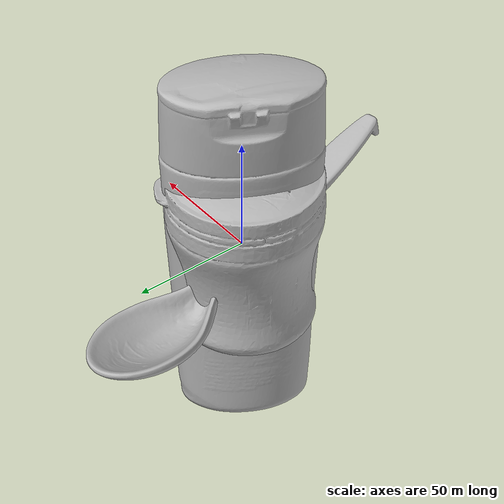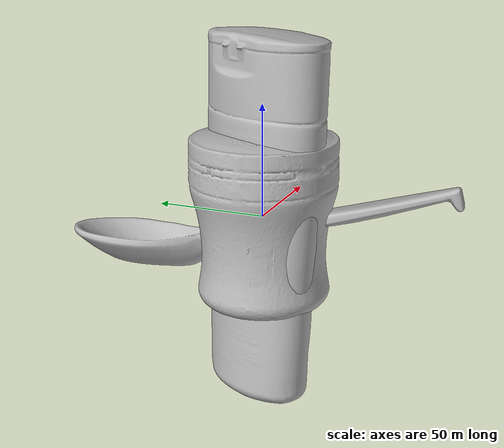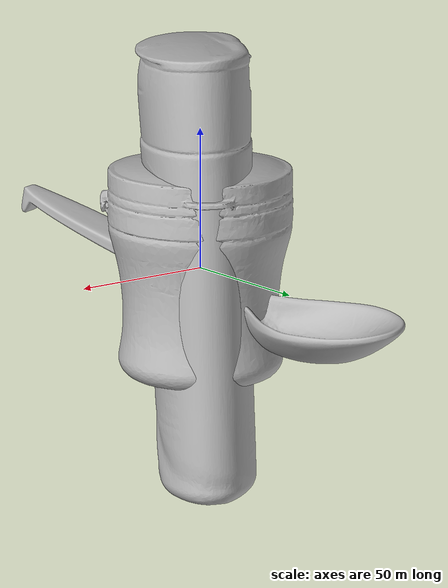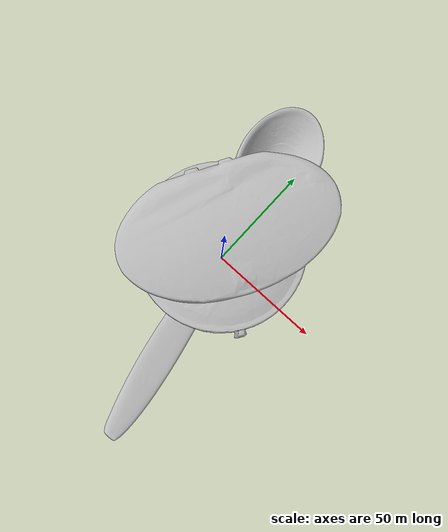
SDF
<sdf version="1.4">
 <world name="default">
  <light name="light1" type="point">
   <pose>0 0 1 0 0 0</pose>
   <diffuse>3 3 3 1</diffuse>
   <specular>3 3 3 1</specular>
  </light>
  <light name="light2" type="point">
   <pose>0 0.5 2 0 0 0</pose>
   <diffuse>1 1 1 1</diffuse>
   <specular>1 1 1 1</specular>
  </light>
  <light name="light3" type="point">
   <pose>0 0.5 2 0 0 0</pose>
   <diffuse>3 3 3 1</diffuse>
   <specular>3 3 3 1</specular>
  </light>
  <scene><ambient>0.7 0.7 0.7</ambient></scene>
  <model name="bottle1">
   <link name="link_bottle1">
    <collision name="default">
     <geometry>
      <mesh><uri>model://green_arrow/collision_meshes/collision.obj</uri><scale>1.0 1.0 1.0</scale></mesh>
     </geometry>
     <surface>
      <friction><ode><mu>0.5</mu><mu2>0.5</mu2></ode></friction>
      <contact><ode><max_vel>0</max_vel><min_depth>0.0001</min_depth><kp>1e8</kp></ode></contact>
     </surface>
    </collision>
    <visual name="default">
     <geometry>
      <mesh><uri>model://green_arrow/visual_meshes/visual.dae</uri><scale>1.0 1.0 1.0</scale></mesh>
     </geometry>
    </visual>
    <inertial>
     <mass>0.159866601228714</mass>
     <pose>0.0005358478520065546 -0.0008270691614598036 0.0022109695710241795 -0.0633227561078847 0.012984243694000861 0.6740794776591725</pose>
     <inertia>
      <ixx>0.00011596808</ixx>
      <iyy>0.00011579238</iyy>
      <izz>7.488036e-05</izz>
      <ixy>0</ixy>
      <ixz>0</ixz>
      <iyz>0</iyz>
     </inertia>
    </inertial>
   </link>
   <pose>0.02475765347480774 -0.08262830972671509 0.039030857384204865 0.038517749563461656 0.024628244692159674 -1.2576323251898738</pose>
  </model>
  <model name="bottle2">
   <link name="link_bottle2">
    <collision name="default">
     <geometry>
      <mesh><uri>model://conditioner/collision_meshes/collision.obj</uri><scale>1.0 1.0 1.0</scale></mesh>
     </geometry>
     <surface>
      <friction><ode><mu>0.5</mu><mu2>0.5</mu2></ode></friction>
      <contact><ode><max_vel>0</max_vel><min_depth>0.0001</min_depth><kp>1e8</kp></ode></contact>
     </surface>
    </collision>
    <visual name="default">
     <geometry>
      <mesh><uri>model://conditioner/visual_meshes/visual.dae</uri><scale>1.0 1.0 1.0</scale></mesh>
     </geometry>
    </visual>
    <inertial>
     <mass>0.1887805312871933</mass>
     <pose>-0.00055994390277192 -0.00017297487647738308 0.004359682556241751 -0.005038374268360293 0.015306043554332214 0.015072361860715313</pose>
     <inertia>
      <ixx>0.00041066532</ixx>
      <iyy>0.00043991112</iyy>
      <izz>6.3318876e-05</izz>
      <ixy>0</ixy>
      <ixz>0</ixz>
      <iyz>0</iyz>
     </inertia>
    </inertial>
   </link>
   <pose>-0.07343637943267822 0.34930217266082764 0.08122971653938293 0.036892961835731986 -0.01566048277103581 1.02847657061471</pose>
  </model>
  <model name="silverware1">
   <link name="link_silverware1">
    <collision name="default">
     <geometry>
      <mesh><uri>model://doraemon_spoon/collision_meshes/collision.obj</uri><scale>1.0 1.0 1.0</scale></mesh>
     </geometry>
     <surface>
      <friction><ode><mu>0.5</mu><mu2>0.5</mu2></ode></friction>
      <contact><ode><max_vel>0</max_vel><min_depth>0.0001</min_depth><kp>1e8</kp></ode></contact>
     </surface>
    </collision>
    <visual name="default">
     <geometry>
      <mesh><uri>model://doraemon_spoon/visual_meshes/visual.dae</uri><scale>1.0 1.0 1.0</scale></mesh>
     </geometry>
    </visual>
    <inertial>
     <mass>0.029215902090072632</mass>
     <pose>-0.022165078669786453 -0.0006374581134878099 -0.003332544816657901 -0.009147069561506448 0.07380416816022378 -0.014123831282405222</pose>
     <inertia>
      <ixx>2.2884674e-06</ixx>
      <iyy>6.499588e-05</iyy>
      <izz>6.610089e-05</izz>
      <ixy>0</ixy>
      <ixz>0</ixz>
      <iyz>0</iyz>
     </inertia>
    </inertial>
   </link>
   <pose>0.18510812520980835 -0.2743149399757385 0.023920930922031403 -0.0915692644533032 -0.26928936277419413 -1.3384359461475486</pose>
  </model>
  <model name="stationery1">
   <link name="link_stationery1">
    <collision name="default">
     <geometry>
      <mesh><uri>model://correction_fuid/collision_meshes/collision.obj</uri><scale>1.0 1.0 1.0</scale></mesh>
     </geometry>
     <surface>
      <friction><ode><mu>0.5</mu><mu2>0.5</mu2></ode></friction>
      <contact><ode><max_vel>0</max_vel><min_depth>0.0001</min_depth><kp>1e8</kp></ode></contact>
     </surface>
    </collision>
    <visual name="default">
     <geometry>
      <mesh><uri>model://correction_fuid/visual_meshes/visual.dae</uri><scale>1.0 1.0 1.0</scale></mesh>
     </geometry>
    </visual>
    <inertial>
     <mass>0.02664039097726345</mass>
     <pose>-0.00012557733862195164 -0.0009722907561808825 -0.001618212671019137 -0.010846611490809042 0.019488348158978066 -0.015992455472155966</pose>
     <inertia>
      <ixx>2.5801672e-05</ixx>
      <iyy>1.5615498e-06</iyy>
      <izz>2.6473212e-05</izz>
      <ixy>0</ixy>
      <ixz>0</ixz>
      <iyz>0</iyz>
     </inertia>
    </inertial>
   </link>
   <pose>0.2447088360786438 -0.2514607906341553 0.009632827714085579 -0.0017273106741335627 -0.05616853281425508 -1.3493126301145288</pose>
  </model>
  <model name="bowl1">
   <link name="link_bowl1">
    <collision name="default">
     <geometry>
      <mesh><uri>model://doraemon_bowl/collision_meshes/collision.obj</uri><scale>1.0 1.0 1.0</scale></mesh>
     </geometry>
     <surface>
      <friction><ode><mu>0.5</mu><mu2>0.5</mu2></ode></friction>
      <contact><ode><max_vel>0</max_vel><min_depth>0.0001</min_depth><kp>1e8</kp></ode></contact>
     </surface>
    </collision>
    <visual name="default">
     <geometry>
      <mesh><uri>model://doraemon_bowl/visual_meshes/visual.dae</uri><scale>1.0 1.0 1.0</scale></mesh>
     </geometry>
    </visual>
    <inertial>
     <mass>0.0632677748799324</mass>
     <pose>-0.014629557728767395 0.00048571318620815873 -0.0020864882972091436 -0.005093978566849342 -0.10568406006641042 -0.026426380562233804</pose>
     <inertia>
      <ixx>8.773087e-05</ixx>
      <iyy>0.00011545301</iyy>
      <izz>0.00016985848</izz>
      <ixy>0</ixy>
      <ixz>0</ixz>
      <iyz>0</iyz>
     </inertia>
    </inertial>
   </link>
   <pose>0.22885331511497498 0.19881579279899597 0.02590547688305378 0.008593563001042128 0.006343654292952657 -2.0379837245481247</pose>
  </model>
  <model name="cup1">
   <link name="link_cup1">
    <collision name="default">
     <geometry>
      <mesh><uri>model://doraemon_cup/collision_meshes/collision.obj</uri><scale>1.0 1.0 1.0</scale></mesh>
     </geometry>
     <surface>
      <friction><ode><mu>0.5</mu><mu2>0.5</mu2></ode></friction>
      <contact><ode><max_vel>0</max_vel><min_depth>0.0001</min_depth><kp>1e8</kp></ode></contact>
     </surface>
    </collision>
    <visual name="default">
     <geometry>
      <mesh><uri>model://doraemon_cup/visual_meshes/visual.dae</uri><scale>1.0 1.0 1.0</scale></mesh>
     </geometry>
    </visual>
    <inertial>
     <mass>0.04278137534856796</mass>
     <pose>-0.0003292987239547074 -0.0016633577179163694 -0.0022522551007568836 0.19498548950287564 -0.013693938110122818 -0.3205458650037051</pose>
     <inertia>
      <ixx>5.8507427e-05</ixx>
      <iyy>5.6580026e-05</iyy>
      <izz>4.623892e-05</izz>
      <ixy>0</ixy>
      <ixz>0</ixz>
      <iyz>0</iyz>
     </inertia>
    </inertial>
   </link>
   <pose>0.03725156933069229 0.3562413454055786 0.046229925006628036 -0.012949774941193358 -0.0074196562160493505 -0.2843127431068882</pose>
  </model>
  <model name="plate1">
   <link name="link_plate1">
    <collision name="default">
     <geometry>
      <mesh><uri>model://hello_kitty_plate/collision_meshes/collision.obj</uri><scale>1.0 1.0 1.0</scale></mesh>
     </geometry>
     <surface>
      <friction><ode><mu>0.5</mu><mu2>0.5</mu2></ode></friction>
      <contact><ode><max_vel>0</max_vel><min_depth>0.0001</min_depth><kp>1e8</kp></ode></contact>
     </surface>
    </collision>
    <visual name="default">
     <geometry>
      <mesh><uri>model://hello_kitty_plate/visual_meshes/visual.dae</uri><scale>1.0 1.0 1.0</scale></mesh>
     </geometry>
    </visual>
    <inertial>
     <mass>0.03555070236325264</mass>
     <pose>0.0073143006302416325 0.0002893744967877865 -0.0027947186026722193 -0.00010431820965322355 -0.007054446463638022 -0.014449070801334592</pose>
     <inertia>
      <ixx>6.855243e-05</ixx>
      <iyy>0.00012937908</iyy>
      <izz>0.0001964492</izz>
      <ixy>0</ixy>
      <ixz>0</ixz>
      <iyz>0</iyz>
     </inertia>
    </inertial>
   </link>
   <pose>0.17075160145759583 -0.15545129776000977 0.018484244123101234 0.006542885381033706 0.13974473728786618 1.2722914508439553</pose>
  </model>
  <model name="box4">
   <link name="link_box4">
    <collision name="default">
     <geometry>
      <mesh><uri>model://wooden_puzzle1/collision_meshes/collision.obj</uri><scale>1.0 1.0 1.0</scale></mesh>
     </geometry>
     <surface>
      <friction><ode><mu>0.5</mu><mu2>0.5</mu2></ode></friction>
      <contact><ode><max_vel>0</max_vel><min_depth>0.0001</min_depth><kp>1e8</kp></ode></contact>
     </surface>
    </collision>
    <visual name="default">
     <geometry>
      <mesh><uri>model://wooden_puzzle1/visual_meshes/visual.dae</uri><scale>1.0 1.0 1.0</scale></mesh>
     </geometry>
    </visual>
    <inertial>
     <mass>0.03278602659702301</mass>
     <pose>-0.00017350679263472557 7.972260937094688e-05 -9.191554272547364e-05 -0.07784358361794479 -0.263610796923839 -0.5528741327723476</pose>
     <inertia>
      <ixx>6.1858273e-06</ixx>
      <iyy>6.0667485e-06</iyy>
      <izz>6.139123e-06</izz>
      <ixy>0</ixy>
      <ixz>0</ixz>
      <iyz>0</iyz>
     </inertia>
    </inertial>
   </link>
   <pose>0.0725160464644432 -0.235727459192276 0.016802648082375526 0.011424880354292826 -0.010299701746481715 -3.113448798933424</pose>
  </model>
  <physics type="ode">
   <max_contacts>50</max_contacts>
   <ode>
    <solver><type>quick</type><iters>75</iters></solver>
    <constraints>
     <contact_max_correcting_vel>0</contact_max_correcting_vel>
     <contact_surface_layer>0</contact_surface_layer>
    </constraints>
   </ode>
  </physics>
 </world>
</sdf>
